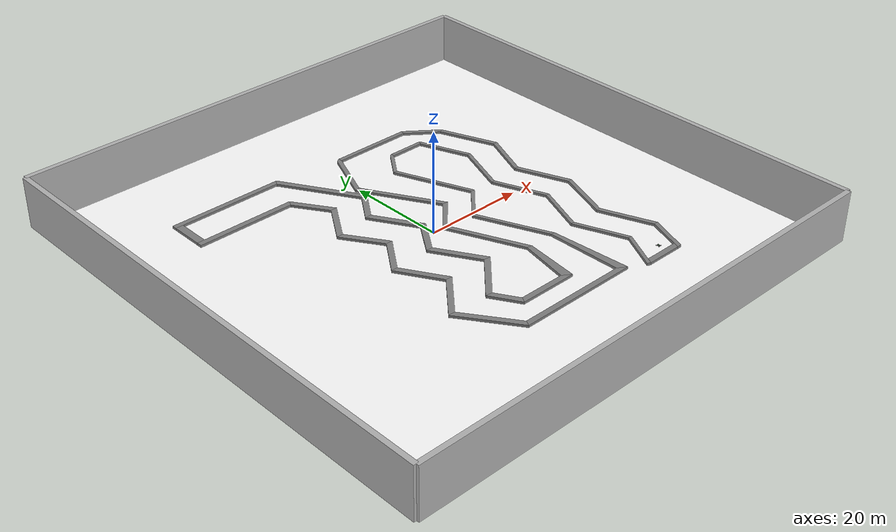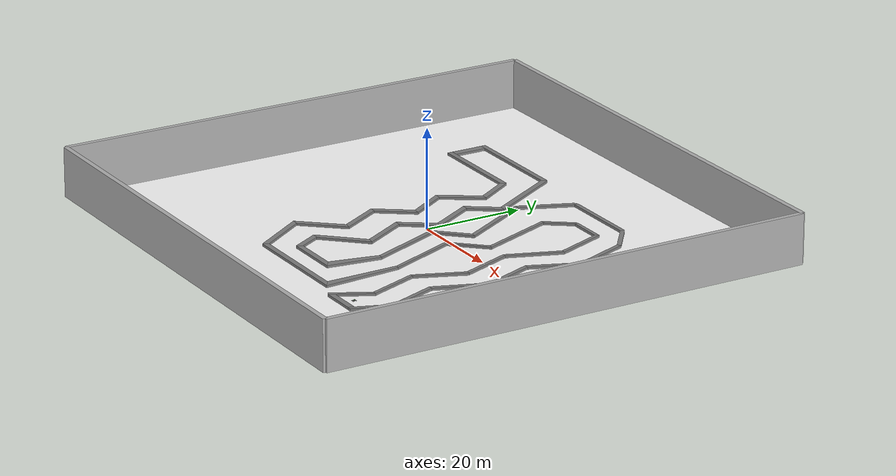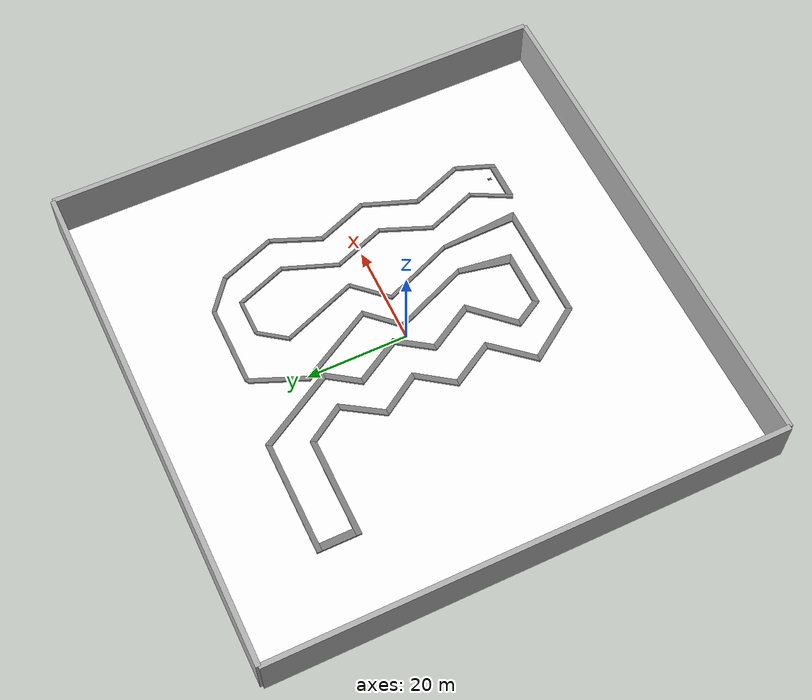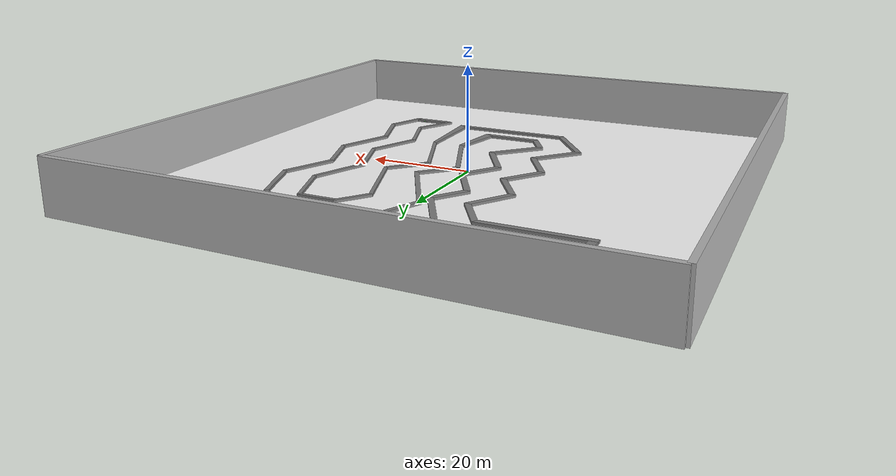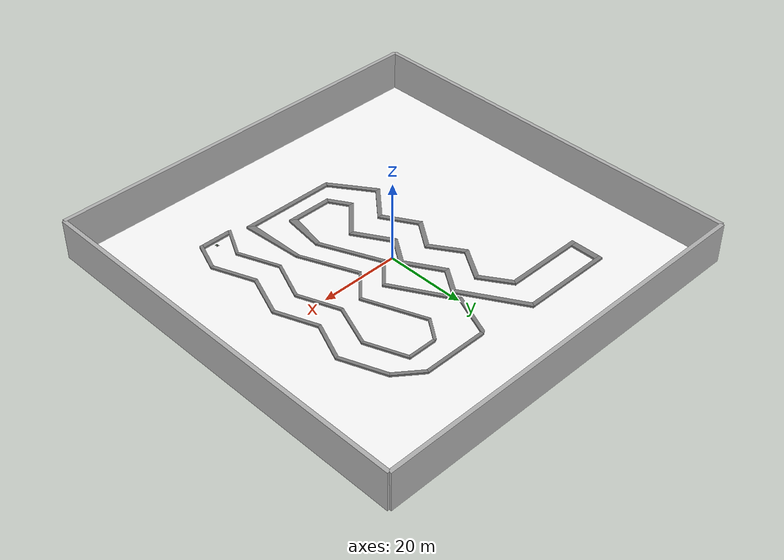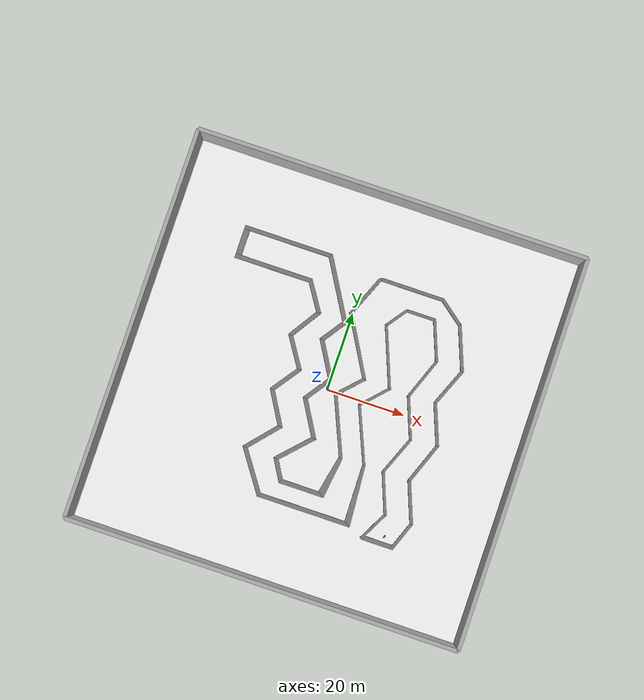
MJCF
<mujoco model="TurboV1">

  <compiler meshdir="/Users/venky/Documents/Projects/DRL_TurboEngine/DRLTurboEngines/DRL_TurboEngine_V2/Tracks_STL/Track_V2"/>
  <compiler angle="degree" coordinate="local"/>
  <option timestep="0.01"/>

  <default>
    <joint armature="0.01" damping="1" limited="true"/>
  </default>

  <asset>
  <mesh name="T2" file="2.stl" scale="0.05 0.05 0.05"/>
  <mesh name="T3" file="3.stl" scale="0.05 0.05 0.05"/>
  <mesh name="T4" file="4.stl" scale="0.05 0.05 0.05"/>
  <mesh name="T5" file="5.stl" scale="0.05 0.05 0.05"/>
  <mesh name="T6" file="6.stl" scale="0.05 0.05 0.05"/>
  <mesh name="T7" file="7.stl" scale="0.05 0.05 0.05"/>
  <mesh name="T8" file="8.stl" scale="0.05 0.05 0.05"/>
  <mesh name="T9" file="9.stl" scale="0.05 0.05 0.05"/>
  <mesh name="T10" file="10.stl" scale="0.05 0.05 0.05"/>
  <mesh name="T11" file="11.stl" scale="0.05 0.05 0.05"/>
  <mesh name="T12" file="12.stl" scale="0.05 0.05 0.05"/>
  <mesh name="T13" file="13.stl" scale="0.05 0.05 0.05"/>
  <mesh name="T14" file="14.stl" scale="0.05 0.05 0.05"/>
  <mesh name="T15" file="15.stl" scale="0.05 0.05 0.05"/>
  <mesh name="T16" file="16.stl" scale="0.05 0.05 0.05"/>
  <mesh name="T17" file="17.stl" scale="0.05 0.05 0.05"/>
  <mesh name="T18" file="18.stl" scale="0.05 0.05 0.05"/>
  <mesh name="T19" file="19.stl" scale="0.05 0.05 0.05"/>
  <mesh name="T20" file="20.stl" scale="0.05 0.05 0.05"/>
  <mesh name="T21" file="21.stl" scale="0.05 0.05 0.05"/>
  <mesh name="T22" file="22.stl" scale="0.05 0.05 0.05"/>
  <mesh name="T23" file="23.stl" scale="0.05 0.05 0.05"/>
  <mesh name="T24" file="24.stl" scale="0.05 0.05 0.05"/>
  <mesh name="T29" file="29.stl" scale="0.05 0.05 0.05"/>
  <mesh name="T30" file="30.stl" scale="0.05 0.05 0.05"/>
  <mesh name="T31" file="31.stl" scale="0.05 0.05 0.05"/>
  <mesh name="T32" file="32.stl" scale="0.05 0.05 0.05"/>
  <mesh name="T33" file="33.stl" scale="0.05 0.05 0.05"/>
  <mesh name="T34" file="34.stl" scale="0.05 0.05 0.05"/>
  <mesh name="T35" file="35.stl" scale="0.05 0.05 0.05"/>
  <mesh name="T36" file="36.stl" scale="0.05 0.05 0.05"/>
  <mesh name="T37" file="37.stl" scale="0.05 0.05 0.05"/>
  <mesh name="T38" file="38.stl" scale="0.05 0.05 0.05"/>
  <mesh name="T39" file="39.stl" scale="0.05 0.05 0.05"/>
  <mesh name="T40" file="40.stl" scale="0.05 0.05 0.05"/>
  <mesh name="T41" file="41.stl" scale="0.05 0.05 0.05"/>
  <mesh name="T42" file="42.stl" scale="0.05 0.05 0.05"/>
  <mesh name="T43" file="43.stl" scale="0.05 0.05 0.05"/>
  <mesh name="T44" file="44.stl" scale="0.05 0.05 0.05"/>
  <mesh name="T45" file="45.stl" scale="0.05 0.05 0.05"/>
  <mesh name="T46" file="46.stl" scale="0.05 0.05 0.05"/>
  <mesh name="T47" file="47.stl" scale="0.05 0.05 0.05"/>
  <mesh name="T48" file="48.stl" scale="0.05 0.05 0.05"/>
  <mesh name="T50" file="50.stl" scale="0.05 0.05 0.05"/>
  <mesh name="T51" file="51.stl" scale="0.05 0.05 0.05"/>
</asset>

  <worldbody>
    <geom name="ground Plane" type="plane" pos="0 0 0" size="50 50 1" rgba="1 1 1 1"/>
<geom name="wall_boundary1" type="box" pos="50 0 5" size="0.5 50 5" rgba="0.7 0.7 0.7 1" contype="1" conaffinity="1"/>
<geom name="wall_boundary2" type="box" pos="-50 0 5" size="0.5 50 5" rgba="0.7 0.7 0.7 1" contype="1" conaffinity="1"/>
<geom name="wall_boundary3" type="box" pos="0 -50 5" size="50 0.5 5" rgba="0.7 0.7 0.7 1" contype="1" conaffinity="1"/>
<geom name="wall_boundary4" type="box" pos="0 50 5" size="50 0.5 5" rgba="0.7 0.7 0.7 1" contype="1" conaffinity="1"/>

<geom type="mesh" mesh="T2" xyaxes="1 0 0 0 0 1" pos="0 0 0.5"/>
<geom type="mesh" mesh="T3" xyaxes="1 0 0 0 0 1" pos="0 0 0.5"/>
<geom type="mesh" mesh="T4" xyaxes="1 0 0 0 0 1" pos="0 0 0.5"/>
<geom type="mesh" mesh="T5" xyaxes="1 0 0 0 0 1" pos="0 0 0.5"/>
<geom type="mesh" mesh="T6" xyaxes="1 0 0 0 0 1" pos="0 0 0.5"/>
<geom type="mesh" mesh="T7" xyaxes="1 0 0 0 0 1" pos="0 0 0.5"/>
<geom type="mesh" mesh="T8" xyaxes="1 0 0 0 0 1" pos="0 0 0.5"/>
<geom type="mesh" mesh="T9" xyaxes="1 0 0 0 0 1" pos="0 0 0.5"/>
<geom type="mesh" mesh="T10" xyaxes="1 0 0 0 0 1" pos="0 0 0.5"/>
<geom type="mesh" mesh="T11" xyaxes="1 0 0 0 0 1" pos="0 0 0.5"/>
<geom type="mesh" mesh="T12" xyaxes="1 0 0 0 0 1" pos="0 0 0.5"/>
<geom type="mesh" mesh="T13" xyaxes="1 0 0 0 0 1" pos="0 0 0.5"/>
<geom type="mesh" mesh="T14" xyaxes="1 0 0 0 0 1" pos="0 0 0.5"/>
<geom type="mesh" mesh="T15" xyaxes="1 0 0 0 0 1" pos="0 0 0.5"/>
<geom type="mesh" mesh="T16" xyaxes="1 0 0 0 0 1" pos="0 0 0.5"/>
<geom type="mesh" mesh="T17" xyaxes="1 0 0 0 0 1" pos="0 0 0.5"/>
<geom type="mesh" mesh="T18" xyaxes="1 0 0 0 0 1" pos="0 0 0.5"/>
<geom type="mesh" mesh="T19" xyaxes="1 0 0 0 0 1" pos="0 0 0.5"/>
<geom type="mesh" mesh="T20" xyaxes="1 0 0 0 0 1" pos="0 0 0.5"/>
<geom type="mesh" mesh="T21" xyaxes="1 0 0 0 0 1" pos="0 0 0.5"/>
<geom type="mesh" mesh="T22" xyaxes="1 0 0 0 0 1" pos="0 0 0.5"/>
<geom type="mesh" mesh="T23" xyaxes="1 0 0 0 0 1" pos="0 0 0.5"/>
<geom type="mesh" mesh="T24" xyaxes="1 0 0 0 0 1" pos="0 0 0.5"/>
<geom type="mesh" mesh="T29" xyaxes="1 0 0 0 0 1" pos="0 0 0.5"/>
<geom type="mesh" mesh="T30" xyaxes="1 0 0 0 0 1" pos="0 0 0.5"/>
<geom type="mesh" mesh="T31" xyaxes="1 0 0 0 0 1" pos="0 0 0.5"/>
<geom type="mesh" mesh="T32" xyaxes="1 0 0 0 0 1" pos="0 0 0.5"/>
<geom type="mesh" mesh="T33" xyaxes="1 0 0 0 0 1" pos="0 0 0.5"/>
<geom type="mesh" mesh="T34" xyaxes="1 0 0 0 0 1" pos="0 0 0.5"/>
<geom type="mesh" mesh="T35" xyaxes="1 0 0 0 0 1" pos="0 0 0.5"/>
<geom type="mesh" mesh="T36" xyaxes="1 0 0 0 0 1" pos="0 0 0.5"/>
<geom type="mesh" mesh="T37" xyaxes="1 0 0 0 0 1" pos="0 0 0.5"/>
<geom type="mesh" mesh="T38" xyaxes="1 0 0 0 0 1" pos="0 0 0.5"/>
<geom type="mesh" mesh="T39" xyaxes="1 0 0 0 0 1" pos="0 0 0.5"/>
<geom type="mesh" mesh="T40" xyaxes="1 0 0 0 0 1" pos="0 0 0.5"/>
<geom type="mesh" mesh="T41" xyaxes="1 0 0 0 0 1" pos="0 0 0.5"/>
<geom type="mesh" mesh="T42" xyaxes="1 0 0 0 0 1" pos="0 0 0.5"/>
<geom type="mesh" mesh="T43" xyaxes="1 0 0 0 0 1" pos="0 0 0.5"/>
<geom type="mesh" mesh="T44" xyaxes="1 0 0 0 0 1" pos="0 0 0.5"/>
<geom type="mesh" mesh="T45" xyaxes="1 0 0 0 0 1" pos="0 0 0.5"/>
<geom type="mesh" mesh="T46" xyaxes="1 0 0 0 0 1" pos="0 0 0.5"/>
<geom type="mesh" mesh="T47" xyaxes="1 0 0 0 0 1" pos="0 0 0.5"/>
<geom type="mesh" mesh="T48" xyaxes="1 0 0 0 0 1" pos="0 0 0.5"/>
<geom type="mesh" mesh="T50" xyaxes="1 0 0 0 0 1" pos="0 0 0.5"/>
<geom type="mesh" mesh="T51" xyaxes="1 0 0 0 0 1" pos="0 0 0.5"/>

    <body name="chassis" pos="25 -30 0.5" euler="0 0 -90">
      <geom name="chassis_geom" type="box" size="0.3 0.15 0.05" rgba="0.3 0.3 0.3 1" mass="100" contype="1" conaffinity="1"/>
      <joint name="chassis_free" type="free"/>

      <site name="ray_site_front" pos="0.3 0 0.1" quat="0.7071 0 -0.7071 0" type="sphere" size="0.05"/>
      <site name="ray_site_right1" pos="0.125 0.17 0.1" quat="0.7071 0.7071 0 0" type="sphere" size="0.05"/>
      <site name="ray_site_right2" pos="-0.125 0.17 0.1" quat="0.7071 0.7071 0 0" type="sphere" size="0.05"/>
      <site name="ray_site_back" pos="-0.3 0 0.1" quat="0 -0.7071 0 -0.7071" type="sphere" size="0.05"/>
      <site name="ray_site_left1" pos="0.125 -0.17 0.1" quat="0.7071 -0.7071 0 0" type="sphere" size="0.05"/>
      <site name="ray_site_left2" pos="-0.125 -0.17 0.1" quat="0.7071 -0.7071 0 0" type="sphere" size="0.05"/>
      <site name="imu_site" pos="0 0 0.1" size="0.05" rgba="0 1 0 1"/>

      <body name="rear_left" pos="0.3 -0.25 0" euler="90 0 0">
        <joint name="rear_left_axle" type="hinge" axis="0 0 1" limited="false"/>
        <geom name="rear_left_wheel" type="cylinder" size="0.08 0.04" rgba="0.7 0.7 0.7 1" mass="20" contype="1" conaffinity="1"/>
      </body>

      <body name="rear_right" pos="0.3 0.25 0" euler="90 0 0">
        <joint name="rear_right_axle" type="hinge" axis="0 0 1" limited="false"/>
        <geom name="rear_right_wheel" type="cylinder" size="0.08 0.04" rgba="0.7 0.7 0.7 1" mass="20" contype="1" conaffinity="1"/>
      </body>

      <body name="front_left_mount" pos="-0.3 -0.25 0" euler="0 90 0">
        <inertial pos="0 0 0" mass="0.001" diaginertia="0.001 0.001 0.001"/>
        <joint name="front_left_steer" type="hinge" axis="1 0 0" limited="true" range="-20 20"/>
        <body name="front_left" pos="0 0 0" euler="90 0 0">
          <joint name="front_left_axle" type="hinge" axis="0 0 1" limited="false"/>
          <geom name="front_left_wheel" type="cylinder" size="0.08 0.04" rgba="0.7 0.7 0.7 1" mass="20" friction="0.1 0.1 0.1" condim="1" contype="1" conaffinity="1"/>
        </body>
      </body>

      <body name="front_right_mount" pos="-0.3 0.25 0" euler="0 90 0">
        <inertial pos="0 0 0" mass="0.001" diaginertia="0.001 0.001 0.001"/>
        <joint name="front_right_steer" type="hinge" axis="1 0 0" limited="true" range="-20 20"/>
        <body name="front_right" pos="0 0 0" euler="90 0 0">
          <joint name="front_right_axle" type="hinge" axis="0 0 1" limited="false"/>
          <geom name="front_right_wheel" type="cylinder" size="0.08 0.04" rgba="0.7 0.7 0.7 1" mass="20" friction="0.1 0.1 0.1" condim="1" contype="1" conaffinity="1"/>
        </body>
      </body>
    </body>
  </worldbody>

  <tendon>
      <fixed name="rear_axles">
        <joint joint="rear_left_axle" coef="1"/>
        <joint joint="rear_right_axle" coef="1"/>
      </fixed>

      <fixed name="front_steer">
        <joint joint="front_left_steer" coef="1"/>
        <joint joint="front_right_steer" coef="1"/>
      </fixed>
   </tendon>

  <actuator>
    <motor name="rear_drive" tendon="rear_axles" gear="25" ctrlrange="0 1"/>
    <position name="front_steer_ctrl" tendon="front_steer" kp="100" ctrlrange="-1 1"/>
  </actuator>

  <sensor>
    <rangefinder name="lidar_front" site="ray_site_front" cutoff="5"/>
    <rangefinder name="lidar_right1" site="ray_site_right1" cutoff="5"/>
    <rangefinder name="lidar_right2" site="ray_site_right2" cutoff="5"/>
    <rangefinder name="lidar_back" site="ray_site_back" cutoff="5"/>
    <rangefinder name="lidar_left1" site="ray_site_left1" cutoff="5"/>
    <rangefinder name="lidar_left2" site="ray_site_left2" cutoff="5"/>
    <velocimeter name="imu_velocity" site="imu_site"/>
    <accelerometer name="imu_acceleration" site="imu_site"/>
  </sensor>
</mujoco>
